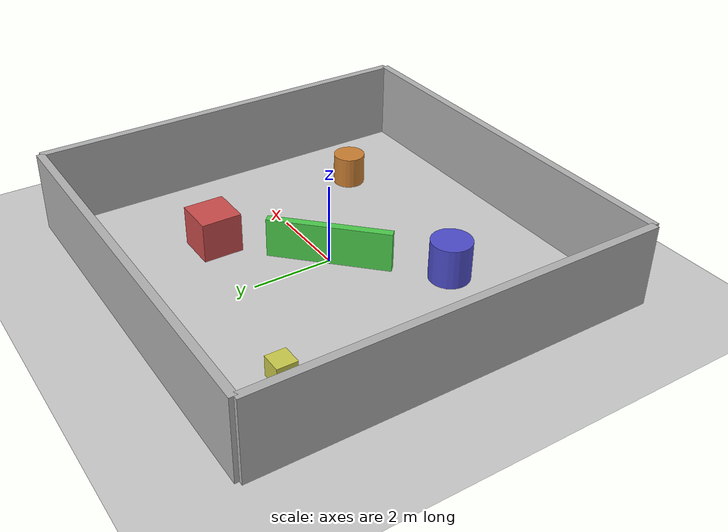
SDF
<?xml version="1.0"?>
<sdf version="1.6">
  <world name="navigation_world">

    <!-- Physics -->
    <physics type="ode">
      <max_step_size>0.001</max_step_size>
      <real_time_factor>1.0</real_time_factor>
      <real_time_update_rate>1000</real_time_update_rate>
    </physics>

    <!-- Lighting -->
    <include>
      <uri>model://sun</uri>
    </include>

    <!-- Ground Plane -->
    <include>
      <uri>model://ground_plane</uri>
    </include>

    <!-- Room Walls -->
    <!-- North Wall -->
    <model name="north_wall">
      <static>true</static>
      <link name="link">
        <pose>0 5 1 0 0 0</pose>
        <collision name="collision">
          <geometry>
            <box>
              <size>10 0.2 2</size>
            </box>
          </geometry>
        </collision>
        <visual name="visual">
          <geometry>
            <box>
              <size>10 0.2 2</size>
            </box>
          </geometry>
          <material>
            <ambient>0.7 0.7 0.7 1</ambient>
            <diffuse>0.7 0.7 0.7 1</diffuse>
          </material>
        </visual>
      </link>
    </model>

    <!-- South Wall -->
    <model name="south_wall">
      <static>true</static>
      <link name="link">
        <pose>0 -5 1 0 0 0</pose>
        <collision name="collision">
          <geometry>
            <box>
              <size>10 0.2 2</size>
            </box>
          </geometry>
        </collision>
        <visual name="visual">
          <geometry>
            <box>
              <size>10 0.2 2</size>
            </box>
          </geometry>
          <material>
            <ambient>0.7 0.7 0.7 1</ambient>
            <diffuse>0.7 0.7 0.7 1</diffuse>
          </material>
        </visual>
      </link>
    </model>

    <!-- East Wall -->
    <model name="east_wall">
      <static>true</static>
      <link name="link">
        <pose>5 0 1 0 0 0</pose>
        <collision name="collision">
          <geometry>
            <box>
              <size>0.2 10 2</size>
            </box>
          </geometry>
        </collision>
        <visual name="visual">
          <geometry>
            <box>
              <size>0.2 10 2</size>
            </box>
          </geometry>
          <material>
            <ambient>0.7 0.7 0.7 1</ambient>
            <diffuse>0.7 0.7 0.7 1</diffuse>
          </material>
        </visual>
      </link>
    </model>

    <!-- West Wall -->
    <model name="west_wall">
      <static>true</static>
      <link name="link">
        <pose>-5 0 1 0 0 0</pose>
        <collision name="collision">
          <geometry>
            <box>
              <size>0.2 10 2</size>
            </box>
          </geometry>
        </collision>
        <visual name="visual">
          <geometry>
            <box>
              <size>0.2 10 2</size>
            </box>
          </geometry>
          <material>
            <ambient>0.7 0.7 0.7 1</ambient>
            <diffuse>0.7 0.7 0.7 1</diffuse>
          </material>
        </visual>
      </link>
    </model>

    <!-- Obstacle 1: Large Box -->
    <model name="obstacle_box_1">
      <static>true</static>
      <link name="link">
        <pose>2 2 0.5 0 0 0</pose>
        <collision name="collision">
          <geometry>
            <box>
              <size>1 1 1</size>
            </box>
          </geometry>
        </collision>
        <visual name="visual">
          <geometry>
            <box>
              <size>1 1 1</size>
            </box>
          </geometry>
          <material>
            <ambient>0.8 0.3 0.3 1</ambient>
            <diffuse>0.8 0.3 0.3 1</diffuse>
          </material>
        </visual>
      </link>
    </model>

    <!-- Obstacle 2: Cylinder -->
    <model name="obstacle_cylinder_1">
      <static>true</static>
      <link name="link">
        <pose>-2 -2 0.5 0 0 0</pose>
        <collision name="collision">
          <geometry>
            <cylinder>
              <radius>0.5</radius>
              <length>1.0</length>
            </cylinder>
          </geometry>
        </collision>
        <visual name="visual">
          <geometry>
            <cylinder>
              <radius>0.5</radius>
              <length>1.0</length>
            </cylinder>
          </geometry>
          <material>
            <ambient>0.3 0.3 0.8 1</ambient>
            <diffuse>0.3 0.3 0.8 1</diffuse>
          </material>
        </visual>
      </link>
    </model>

    <!-- Obstacle 3: Wall-like barrier -->
    <model name="obstacle_wall">
      <static>true</static>
      <link name="link">
        <pose>0 0 0.5 0 0 0.785</pose>
        <collision name="collision">
          <geometry>
            <box>
              <size>3 0.2 1</size>
            </box>
          </geometry>
        </collision>
        <visual name="visual">
          <geometry>
            <box>
              <size>3 0.2 1</size>
            </box>
          </geometry>
          <material>
            <ambient>0.3 0.8 0.3 1</ambient>
            <diffuse>0.3 0.8 0.3 1</diffuse>
          </material>
        </visual>
      </link>
    </model>

    <!-- Obstacle 4: Small Box -->
    <model name="obstacle_box_2">
      <static>true</static>
      <link name="link">
        <pose>-3 3 0.25 0 0 0</pose>
        <collision name="collision">
          <geometry>
            <box>
              <size>0.5 0.5 0.5</size>
            </box>
          </geometry>
        </collision>
        <visual name="visual">
          <geometry>
            <box>
              <size>0.5 0.5 0.5</size>
            </box>
          </geometry>
          <material>
            <ambient>0.8 0.8 0.3 1</ambient>
            <diffuse>0.8 0.8 0.3 1</diffuse>
          </material>
        </visual>
      </link>
    </model>

    <!-- Obstacle 5: Another Cylinder -->
    <model name="obstacle_cylinder_2">
      <static>true</static>
      <link name="link">
        <pose>3 -2.5 0.4 0 0 0</pose>
        <collision name="collision">
          <geometry>
            <cylinder>
              <radius>0.4</radius>
              <length>0.8</length>
            </cylinder>
          </geometry>
        </collision>
        <visual name="visual">
          <geometry>
            <cylinder>
              <radius>0.4</radius>
              <length>0.8</length>
            </cylinder>
          </geometry>
          <material>
            <ambient>0.8 0.5 0.2 1</ambient>
            <diffuse>0.8 0.5 0.2 1</diffuse>
          </material>
        </visual>
      </link>
    </model>

    <!-- Scene Settings -->
    <scene>
      <ambient>0.4 0.4 0.4 1</ambient>
      <background>0.7 0.7 0.7 1</background>
      <shadows>true</shadows>
    </scene>

    <!-- Gravity -->
    <gravity>0 0 -9.81</gravity>

  </world>
</sdf>
